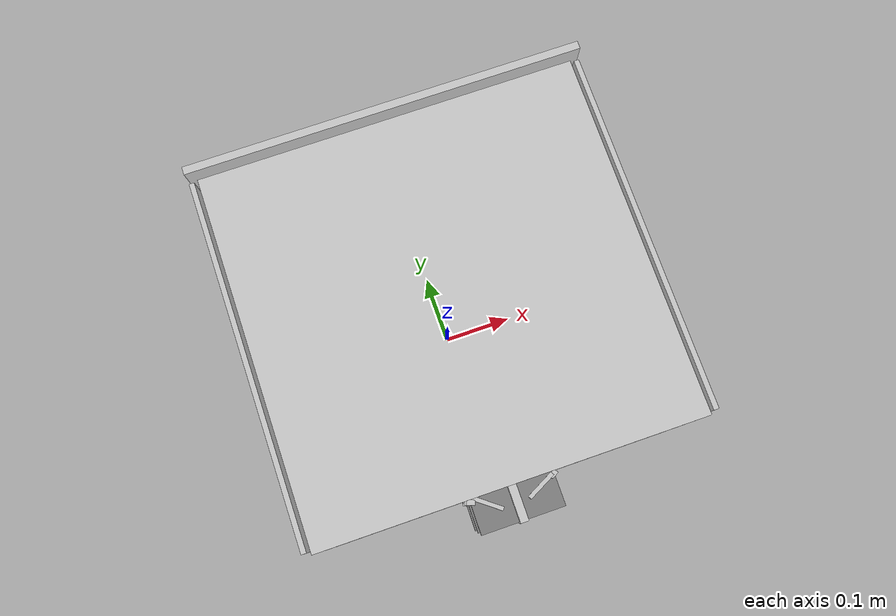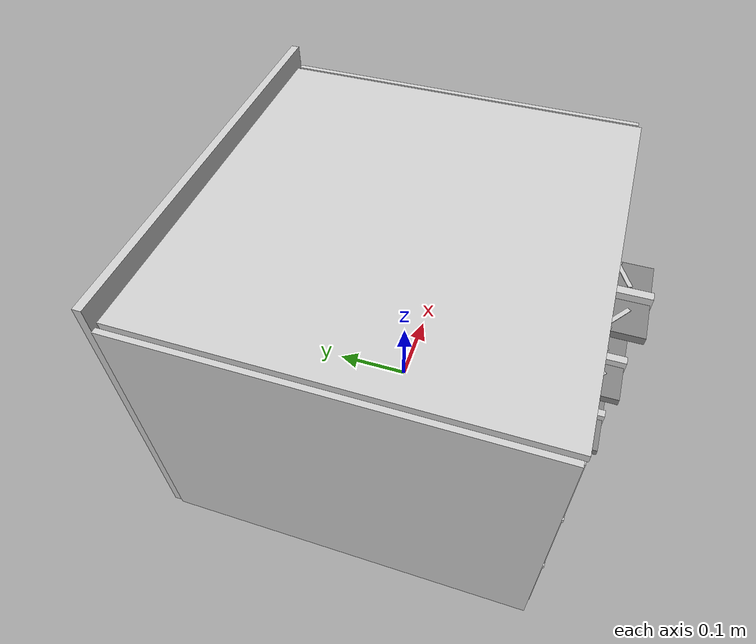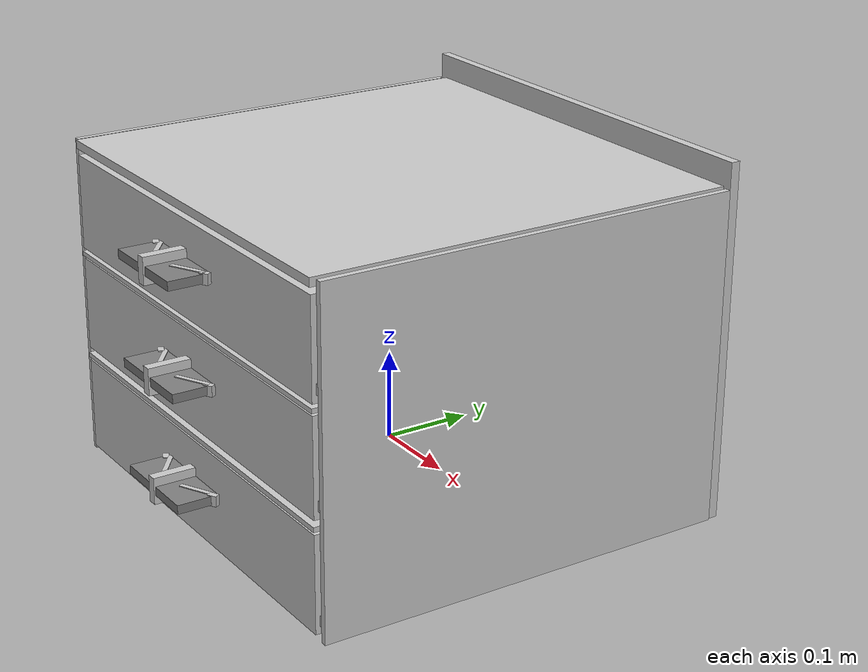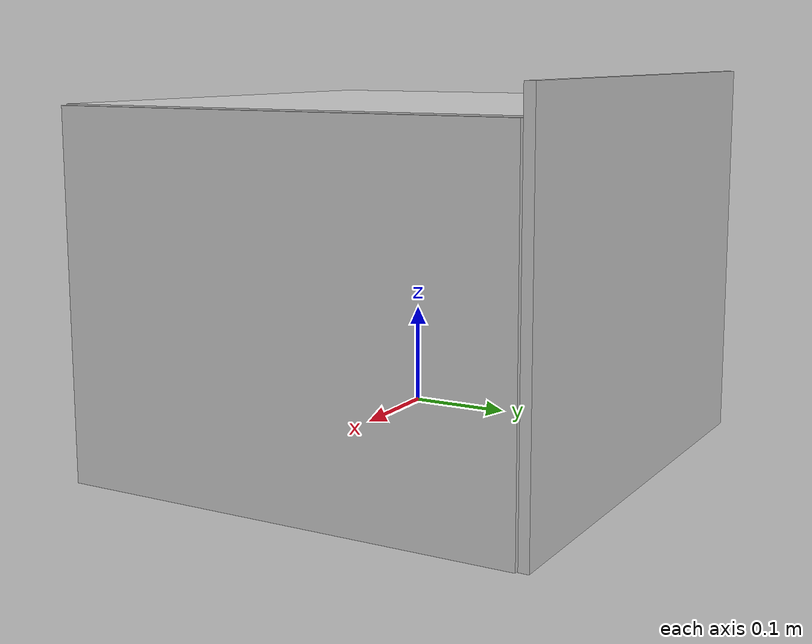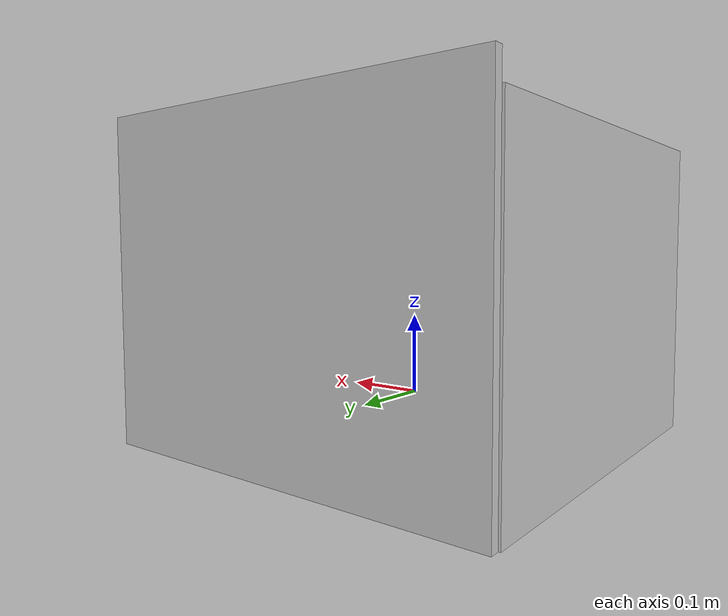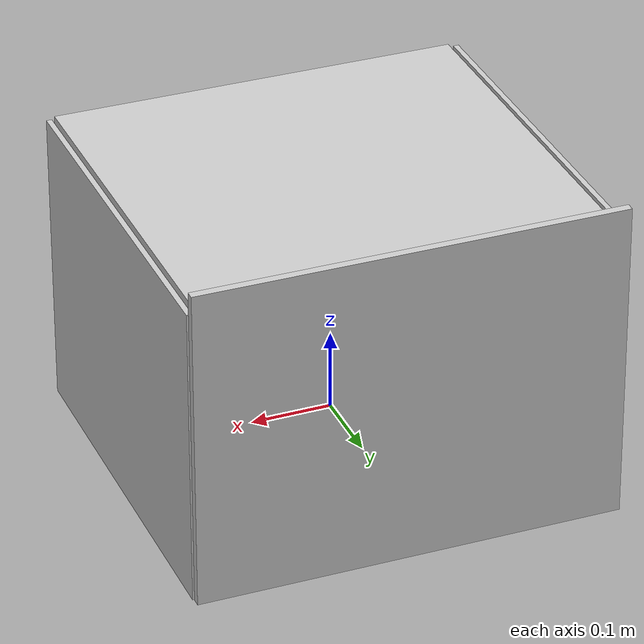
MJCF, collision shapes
<?xml version="1.0" ?>
<!-- @bbox dx=0.55 dy=0.50 dz=0.45 -->
<mujoco model="drawer">
    <compiler angle="radian" meshdir="./" />
    <default>
		<default class="visual">
		<geom conaffinity="0" contype="0" />
		</default>
		<default class="collision">
		<geom type="box" mass="0" group="3" solimp="0.998 0.998 0.001" solref="0.001 1" friction="0.95 0.3 0.1"/>
		</default>
		<default class="placepoint">
		<site type="sphere" size="0.01" group="2" rgba="0 1 0 0" />
		</default>
		<default class="keypoint">
		<site type="sphere" size="0.01" group="3" rgba="1 0 0 1" />
		</default>
		<default class="boundpoint">
		<site type="sphere" size="0.01" group="3" rgba="1 0 0 1" />
		</default>
		<default class="grasppoint">
		<site type="sphere" size="0.01" group="4" rgba="0 0 1 1" />
		</default>
  	</default>
	<asset>
        <texture file="./base/dark-wood.png" name="tex-base_vis" type="2d" />
        <material name="base_vis" reflectance="0.5" texrepeat="1 1" texture="tex-base_vis" texuniform="false" />
        <mesh name="base_vis_vis" file="./base/visual/base_vis_vis.msh" scale="0.13000 0.13000 0.13000" />
		<mesh file="./drawer_middle/visual/drawer_middle_vis.msh" name="drawer_middle_vis" scale="0.13000 0.13000 0.13000" />
		<mesh file="./drawer_high/visual/drawer_high_vis.msh" name="drawer_high_vis" scale="0.13000 0.13000 0.13000" />
		<mesh file="./drawer_low/visual/drawer_low_vis.msh" name="drawer_low_vis" scale="0.13000 0.13000 0.13000" />
    </asset>
    <worldbody>
		<site class="boundpoint" name="bnd_p0"   pos="-0.275 -0.250 -0.056" group="3" />
		<site class="boundpoint" name="bnd_px"   pos=" 0.275 -0.250 -0.056" group="3" />
		<site class="boundpoint" name="bnd_py"   pos="-0.275  0.250 -0.056" group="3" />
		<site class="boundpoint" name="bnd_pxy"  pos=" 0.275  0.250 -0.056" group="3" />
		<site class="boundpoint" name="bnd_pz"   pos="-0.275 -0.250  0.345" group="3" />
		<site class="boundpoint" name="bnd_pxz"  pos=" 0.275 -0.250  0.345" group="3" />
		<site class="boundpoint" name="bnd_pyz"  pos="-0.275  0.250  0.345" group="3" />
		<site class="boundpoint" name="bnd_pxyz" pos=" 0.275  0.250  0.345" group="3" />
		<!-- Cabinet-level top/bottom centers (world frame, static). -->
		<site name="top_site"    pos="0.000 0.000 0.345" size="0.01" rgba="1 0 0 0" />
		<site name="bottom_site" pos="0.000 0.000 -0.056" size="0.01" rgba="0 1 0 0" />
		<body name="base" pos="0.00000 0.00000 0.13000" quat="0.5 0.5 -0.5 -0.5">
	      <geom solimp="0.998 0.998 0.001" solref="0.001 1" density="100" friction="0.95 0.3 0.1" type="mesh" mesh="base_vis_vis" class="visual" material="base_vis" />
	      <geom class="collision" pos="-0.00000 0.18268 -0.00000" quat="0.00000 0.70711 0.70711 0.00000" size="0.00478 0.24448 0.25158" rgba="0.8 0.8 0.8 0.3" />
	      <geom class="collision" pos="0.00000 0.05639 -0.00000" quat="0.00000 0.70711 0.70711 0.00000" size="0.00257 0.24448 0.25158" rgba="0.8 0.8 0.8 0.3" />
	      <geom class="collision" pos="0.00000 -0.06596 -0.00000" quat="0.70711 -0.00000 -0.00000 -0.70711" size="0.00273 0.24448 0.25158" rgba="0.8 0.8 0.8 0.3" />
	      <geom class="collision" pos="-0.00000 -0.00000 -0.25969" quat="0.70711 0.00000 0.70711 0.00000" size="0.00341 0.18632 0.24019" rgba="0.8 0.8 0.8 0.3" />
	      <geom class="collision" pos="0.00000 0.00000 0.25992" quat="0.70711 0.00000 -0.70711 0.00000" size="0.00341 0.18632 0.24019" rgba="0.8 0.8 0.8 0.3" />
	      <geom class="collision" pos="-0.24687 0.01453 -0.00000" quat="0.00000 0.00000 1.00000 0.00000" size="0.00525 0.20054 0.26138" rgba="0.8 0.8 0.8 0.3" />

		<body name="drawer_slide_top" pos="0.00000 0.00000 0.00000">
			<inertial pos="0 0 0" mass="3" diaginertia="1 1 1" />
			<joint name="top_drawer_slide" type="slide" pos="0.00000 0.00000 0.00000" axis="1 0 0" limited="true" range="-0.005 0.32" damping="50" />
			<site rgba="0 0 0 0" type="box" pos="-0.00218 0.05636 -0.00000" quat="0.00000 0.70711 0.70711 0.00000" size="0.02022 0.08279 0.08821" name="top_region" />
			<site class="grasppoint" name="slide_top_handle" pos="0.26000 0.12200 0.00000" group="4" />
			<geom solimp="0.998 0.998 0.001" solref="0.001 1" density="100" friction="0.95 0.3 0.1" type="mesh" mesh="drawer_high_vis" class="visual" material="base_vis" />
			<geom class="collision" pos="0.22961 0.11677 -0.00000" quat="1.00000 0.00000 0.00000 -0.00000" size="0.01375 0.05382 0.25090" rgba="0.8 0.8 0.8 0.3" />
			<geom class="collision" pos="-0.22347 0.11677 0.00000" quat="1.00000 0.00000 0.00000 0.00000" size="0.01375 0.05294 0.25415" rgba="0.8 0.8 0.8 0.3" />
			<geom class="collision" pos="-0.00000 0.07712 0.00000" quat="0.00000 -0.70711 -0.70711 -0.00000" size="0.00580 0.23863 0.25420" rgba="0.8 0.8 0.8 0.3" />
			<geom class="collision" pos="0.00335 0.11536 -0.24058" quat="0.70711 0.00000 0.70711 0.00000" size="0.00944 0.05140 0.21406" rgba="0.8 0.8 0.8 0.3" />
			<geom class="collision" pos="0.26497 0.12483 0.00000" quat="0.00000 0.00000 1.00000 0.00000" size="0.02681 0.015 0.0055" rgba="0.8 0.8 0.8 0.3" />
			<!-- Anti-slip handle box: same size/pos as handle, ONLY collides with finger pads (contype=2 conaffinity=2). -->
			<geom name="grip_handle_top" type="box" size="0.025 0.005 0.0555" pos="0.26497 0.12483 0.00000" quat="0.00000 0.00000 1.00000 0.00000" contype="2" conaffinity="2" group="3" friction="4 4 0.1" density="50" solref="0.001 1"/>
			<geom class="collision" pos="0.25688 0.12483 -0.03487" quat="0.00000 -0.97198 0.00000 0.23506" size="0.00270 0.00593 0.02096" rgba="0.8 0.8 0.8 0.3" />
			<geom class="collision" pos="0.25566 0.12483 0.03526" quat="0.32083 -0.00000 0.94714 -0.00000" size="0.00270 0.00593 0.02096" rgba="0.8 0.8 0.8 0.3" />
			<geom class="collision" pos="0.24796 0.12483 0.05470" quat="0.14192 -0.14192 0.69272 0.69272" size="0.00335 0.00528 0.00593" rgba="0.8 0.8 0.8 0.3" />
			<geom class="collision" pos="0.24835 0.12483 -0.05431" quat="0.68385 0.68385 0.17987 -0.17987" size="0.00335 0.00528 0.00593" rgba="0.8 0.8 0.8 0.3" />
			<geom class="collision" pos="0.00335 0.11536 0.24177" quat="0.70711 0.00000 0.70711 0.00000" size="0.00944 0.05140 0.21406" rgba="0.8 0.8 0.8 0.3" />
</body>
		<body name="drawer_slide_middle" pos="0.00000 0.00000 0.00000">
			<inertial pos="0 0 0" mass="3" diaginertia="1 1 1" />
			<joint name="middle_drawer_slide" type="slide" pos="0.00000 0.00000 0.00000" axis="1 0 0" limited="true" range="-0.005 0.32" damping="50" />
			<site rgba="0 0 0 0" type="box" pos="-0.00218 0.00046 -0.00000" quat="0.00000 0.70711 0.70711 0.00000" size="0.02022 0.08279 0.08821" name="middle_region" />
			<site class="grasppoint" name="slide_middle_handle" pos="0.26000 0.00000 0.00000" group="4" />
			<geom solimp="0.998 0.998 0.001" solref="0.001 1" density="100" friction="0.95 0.3 0.1" type="mesh" mesh="drawer_middle_vis" class="visual" material="base_vis" />
			<geom class="collision" pos="0.22961 -0.00281 -0.00000" quat="0.00000 0.00000 1.00000 0.00000" size="0.01375 0.05382 0.25090" rgba="0.8 0.8 0.8 0.3" />
			<geom class="collision" pos="-0.22347 -0.00281 -0.00000" quat="0.00000 0.00000 1.00000 0.00000" size="0.01375 0.05294 0.25415" rgba="0.8 0.8 0.8 0.3" />
			<geom class="collision" pos="-0.00000 -0.04243 -0.00000" quat="0.00000 0.70711 0.70711 0.00000" size="0.00580 0.23863 0.25420" rgba="0.8 0.8 0.8 0.3" />
			<geom class="collision" pos="0.00335 -0.00421 -0.24058" quat="0.70711 0.00000 0.70711 0.00000" size="0.00944 0.05140 0.21406" rgba="0.8 0.8 0.8 0.3" />
			<geom class="collision" pos="0.26497 0.00525 0.00000" quat="0.00000 0.00000 1.00000 0.00000" size="0.02681 0.015 0.0055" rgba="0.8 0.8 0.8 0.3" />
			<!-- Anti-slip handle box: same size/pos as handle, ONLY collides with finger pads (contype=2 conaffinity=2). -->
			<geom name="grip_handle_mid" type="box" size="0.025 0.005 0.0555" pos="0.26497 0.00525 0.00000" quat="0.00000 0.00000 1.00000 0.00000" contype="2" conaffinity="2" group="3" friction="4 4 0.1" density="50" solref="0.001 1"/>
			<geom class="collision" pos="0.25688 0.00525 -0.03487" quat="0.23506 0.00000 -0.97198 -0.00000" size="0.00270 0.00593 0.02096" rgba="0.8 0.8 0.8 0.3" />
			<geom class="collision" pos="0.25566 0.00525 0.03526" quat="0.32083 -0.00000 0.94714 -0.00000" size="0.00270 0.00593 0.02096" rgba="0.8 0.8 0.8 0.3" />
			<geom class="collision" pos="0.24796 0.00525 0.05470" quat="0.14192 -0.14192 0.69272 0.69272" size="0.00335 0.00528 0.00593" rgba="0.8 0.8 0.8 0.3" />
			<geom class="collision" pos="0.24835 0.00525 -0.05431" quat="0.68385 0.68385 0.17987 -0.17987" size="0.00335 0.00528 0.00593" rgba="0.8 0.8 0.8 0.3" />
			<geom class="collision" pos="0.00335 -0.00421 0.24177" quat="0.70711 0.00000 0.70711 0.00000" size="0.00944 0.05140 0.21406" rgba="0.8 0.8 0.8 0.3" />
		</body>

	    <body name="drawer_slide_bottom" pos="0.00000 0.00000 0.00000">
			<inertial pos="0 0 0" mass="3" diaginertia="1 1 1" />
			<joint name="bottom_drawer_slide" type="slide" pos="0.00000 0.00000 0.00000" axis="1 0 0" limited="true" range="-0.005 0.32" damping="50" />
			<site rgba="0 0 0 0" type="box" pos="-0.00218 -0.05636 -0.00000" quat="0.00000 0.70711 0.70711 0.00000" size="0.02022 0.08279 0.08821" name="bottom_region" />
			<site class="grasppoint" name="slide_bottom_handle" pos="0.26000 -0.11700 0.00000" group="4" />
			<geom solimp="0.998 0.998 0.001" solref="0.001 1" density="100" friction="0.95 0.3 0.1" type="mesh" mesh="drawer_low_vis" class="visual" material="base_vis" />
			<geom class="collision" pos="0.22961 -0.12584 -0.00000" quat="0.00000 0.00000 1.00000 0.00000" size="0.01375 0.05382 0.25090" rgba="0.8 0.8 0.8 0.3" />
			<geom class="collision" pos="-0.22347 -0.12584 -0.00000" quat="0.00000 0.00000 1.00000 0.00000" size="0.01375 0.05294 0.25415" rgba="0.8 0.8 0.8 0.3" />
			<geom class="collision" pos="-0.00000 -0.16546 -0.00000" quat="0.00000 -0.70711 0.70711 0.00000" size="0.00580 0.23863 0.25420" rgba="0.8 0.8 0.8 0.3" />
			<geom class="collision" pos="0.00335 -0.12724 -0.24058" quat="0.70711 0.00000 0.70711 0.00000" size="0.00944 0.05140 0.21406" rgba="0.8 0.8 0.8 0.3" />
			<geom class="collision" pos="0.26497 -0.11778 0.00000" quat="0.00000 0.00000 1.00000 0.00000" size="0.02681 0.015 0.0055" rgba="0.8 0.8 0.8 0.3" />
			<!-- Anti-slip handle box: same size/pos as handle, ONLY collides with finger pads (contype=2 conaffinity=2). -->
			<geom name="grip_handle_bottom" type="box" size="0.025 0.005 0.0555" pos="0.26497 -0.11778 0.00000" quat="0.00000 0.00000 1.00000 0.00000" contype="2" conaffinity="2" group="3" friction="4 4 0.1" density="50" solref="0.001 1"/>
			<geom class="collision" pos="0.25688 -0.11778 -0.03487" quat="0.97198 -0.00000 0.23506 -0.00000" size="0.00270 0.00593 0.02096" rgba="0.8 0.8 0.8 0.3" />
			<geom class="collision" pos="0.25566 -0.11778 0.03526" quat="0.32083 -0.00000 0.94714 -0.00000" size="0.00270 0.00593 0.02096" rgba="0.8 0.8 0.8 0.3" />
			<geom class="collision" pos="0.24796 -0.11778 0.05470" quat="0.14192 -0.14192 0.69272 0.69272" size="0.00335 0.00528 0.00593" rgba="0.8 0.8 0.8 0.3" />
			<geom class="collision" pos="0.24835 -0.11778 -0.05431" quat="0.68385 0.68385 0.17987 -0.17987" size="0.00335 0.00528 0.00593" rgba="0.8 0.8 0.8 0.3" />
			<geom class="collision" pos="0.00335 -0.12724 0.24177" quat="0.70711 0.00000 0.70711 0.00000" size="0.00944 0.05140 0.21406" rgba="0.8 0.8 0.8 0.3" />
		</body>
        </body>
    </worldbody>
</mujoco>
